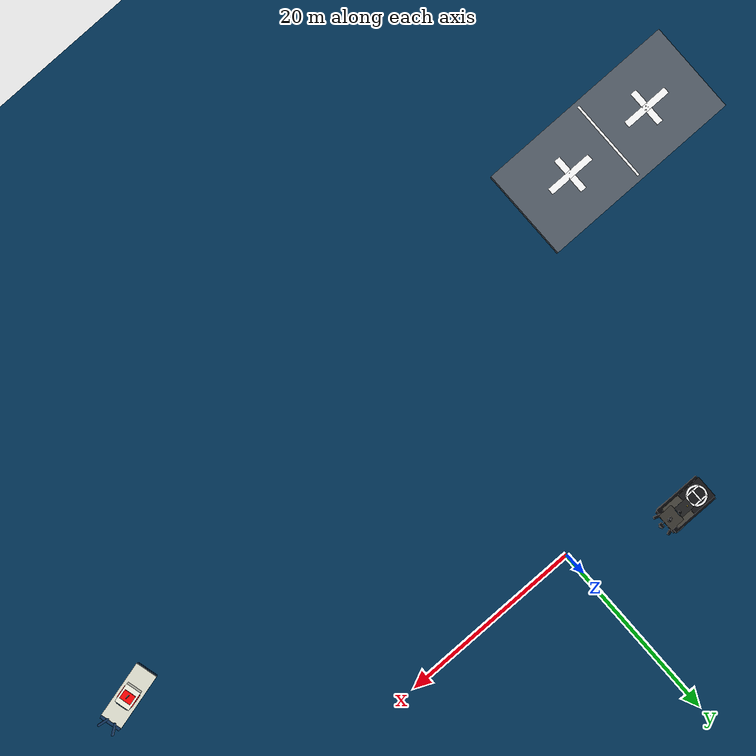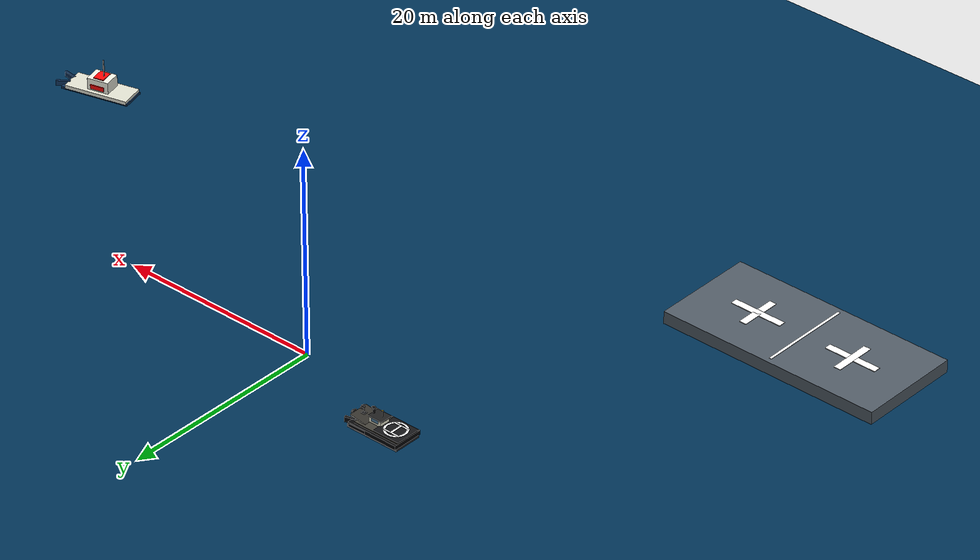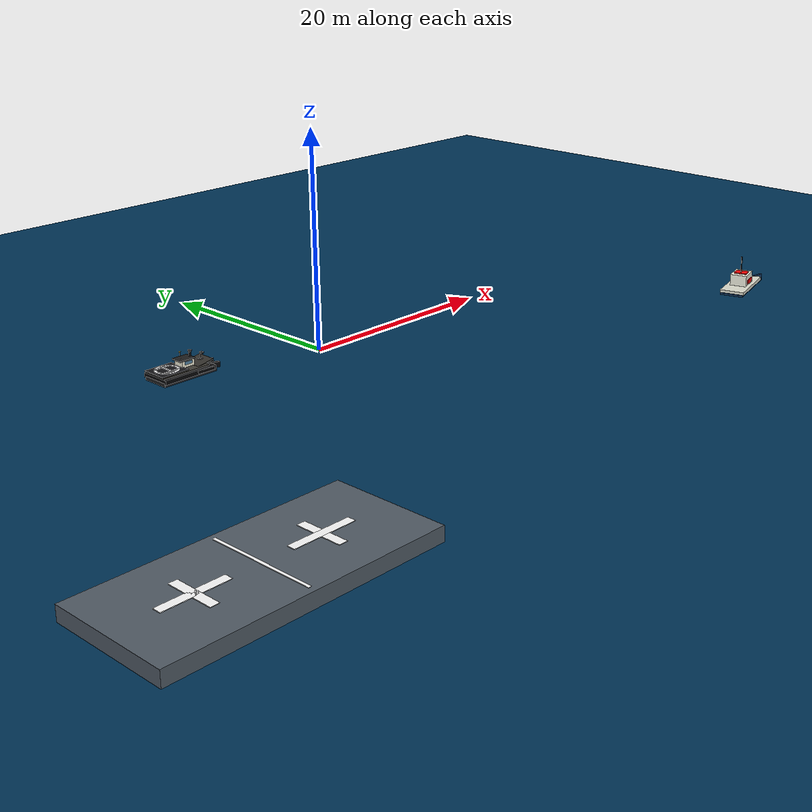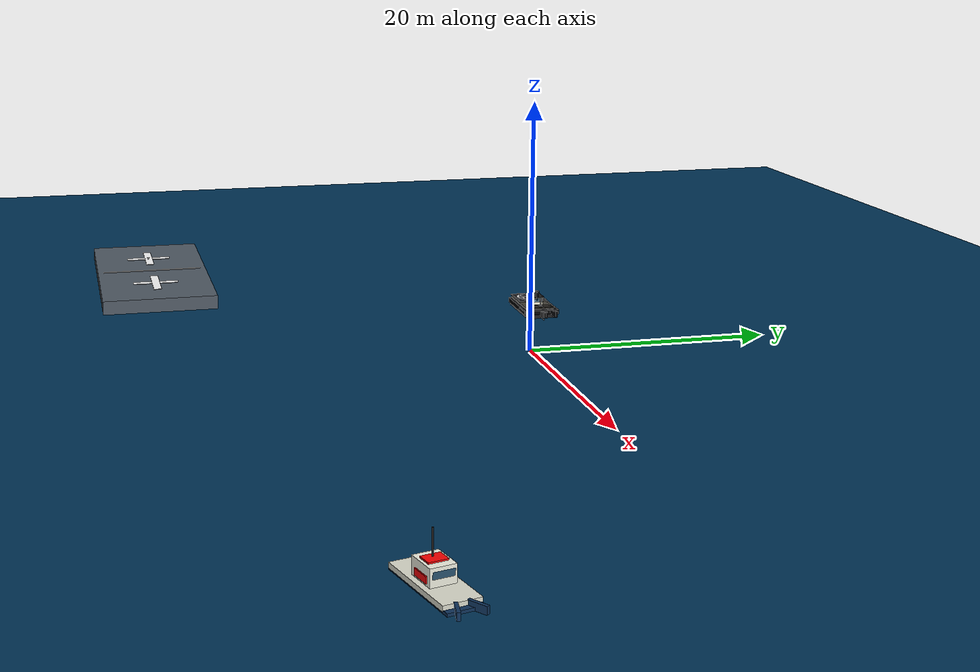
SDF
<sdf version="1.10">
 <world name="dual_uav_dynamic_capture">
  <plugin filename="gz-sim-physics-system" name="gz::sim::systems::Physics"/>
  <plugin filename="gz-sim-user-commands-system" name="gz::sim::systems::UserCommands"/>
  <plugin filename="gz-sim-scene-broadcaster-system" name="gz::sim::systems::SceneBroadcaster"/>
  <plugin filename="gz-sim-contact-system" name="gz::sim::systems::Contact"/>
  <plugin filename="gz-sim-sensors-system" name="gz::sim::systems::Sensors">
   <render_engine>ogre2</render_engine>
  </plugin>
  <plugin filename="gz-sim-imu-system" name="gz::sim::systems::Imu"/>
  <plugin filename="gz-sim-air-pressure-system" name="gz::sim::systems::AirPressure"/>
  <plugin filename="gz-sim-magnetometer-system" name="gz::sim::systems::Magnetometer"/>
  <plugin filename="gz-sim-navsat-system" name="gz::sim::systems::NavSat"/>
  <physics type="ode">
   <max_step_size>0.004</max_step_size>
   <real_time_factor>1</real_time_factor>
   <real_time_update_rate>250</real_time_update_rate>
  </physics>
  <gravity>0 0 -9.8</gravity>
  <scene>
   <grid>false</grid>
   <ambient>0.75 0.78 0.82 1</ambient>
   <background>0.82 0.9 0.96 1</background>
   <shadows>true</shadows>
  </scene>
  <spherical_coordinates>
   <surface_model>EARTH_WGS84</surface_model>
   <world_frame_orientation>ENU</world_frame_orientation>
   <latitude_deg>47.397971057728974</latitude_deg>
   <longitude_deg>8.5461637398001464</longitude_deg>
   <elevation>0</elevation>
   <heading_deg>0</heading_deg>
  </spherical_coordinates>
  <model name="ocean_plane">
   <static>true</static>
   <link name="ocean_link">
    <visual name="ocean_visual">
     <pose>0 0 -0.02 0 0 0</pose>
     <geometry><plane><normal>0 0 1</normal><size>600 600</size></plane></geometry>
     <material>
      <ambient>0 0.08 0.16 0.48</ambient>
      <diffuse>0 0.2 0.34 0.48</diffuse>
      <specular>0.05 0.08 0.1 1</specular>
     </material>
    </visual>
    <collision name="ocean_collision">
     <geometry><plane><normal>0 0 1</normal><size>600 600</size></plane></geometry>
    </collision>
   </link>
  </model>
  <model name="dual_uav_launch_pad">
   <static>true</static>
   <pose>-30 -28 0 0 0 0</pose>
   <link name="pad">
    <collision name="pad_collision">
     <pose>0 0 0.6 0 0 0</pose>
     <geometry><box><size>22 10 1.2</size></box></geometry>
    </collision>
    <visual name="pad_visual">
     <pose>0 0 0.6 0 0 0</pose>
     <geometry><box><size>22 10 1.2</size></box></geometry>
     <material><ambient>0.18 0.2 0.22 1</ambient><diffuse>0.32 0.36 0.4 1</diffuse></material>
    </visual>
    <visual name="divider">
     <pose>0 0 1.22 0 0 0</pose>
     <geometry><box><size>0.25 9 0.05</size></box></geometry>
     <material><ambient>1 1 1 1</ambient><diffuse>1 1 1 1</diffuse></material>
    </visual>
    <visual name="h_left_crossbar">
     <pose>-5 0 1.23 0 0 0</pose>
     <geometry><box><size>5.2 0.7 0.05</size></box></geometry>
     <material><ambient>1 1 1 1</ambient><diffuse>1 1 1 1</diffuse></material>
    </visual>
    <visual name="h_left_upright">
     <pose>-5 0 1.23 0 0 1.5708</pose>
     <geometry><box><size>4 0.7 0.05</size></box></geometry>
     <material><ambient>1 1 1 1</ambient><diffuse>1 1 1 1</diffuse></material>
    </visual>
    <visual name="h_right_crossbar">
     <pose>5 0 1.23 0 0 0</pose>
     <geometry><box><size>5.2 0.7 0.05</size></box></geometry>
     <material><ambient>1 1 1 1</ambient><diffuse>1 1 1 1</diffuse></material>
    </visual>
    <visual name="h_right_upright">
     <pose>5 0 1.23 0 0 1.5708</pose>
     <geometry><box><size>4 0.7 0.05</size></box></geometry>
     <material><ambient>1 1 1 1</ambient><diffuse>1 1 1 1</diffuse></material>
    </visual>
   </link>
  </model>
  <include><uri>model://simple_boat</uri><name>usv_01</name><pose>-12 4 0.35 0 0 0</pose></include>
  <include><uri>model://target_vessel</uri><name>enemy_target</name><pose>42 -18 0 0 0 0.25</pose></include>
  <light name="sun" type="directional">
   <pose>0 0 80 0 0 0</pose>
   <intensity>1.1</intensity>
   <direction>-0.35 0.2 -0.92</direction>
   <diffuse>0.9 0.9 0.86 1</diffuse>
   <specular>0.25 0.25 0.25 1</specular>
  </light>
 </world>
</sdf>

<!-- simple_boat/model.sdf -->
<sdf version="1.8">
  <model name="simple_boat">
    <pose>0 0 0.4375 0 0 0</pose>

    <link name="hull">
      <enable_wind>true</enable_wind>
      <inertial>
        <mass>150.0</mass>
        <inertia>
          <ixx>85.0</ixx>
          <iyy>180.0</iyy>
          <izz>220.0</izz>
          <ixy>0</ixy>
          <ixz>0</ixz>
          <iyz>0</iyz>
        </inertia>
      </inertial>

      <collision name="hull_collision">
        <pose>0 0 -0.0625 0 0 0</pose>
        <geometry>
          <box>
            <size>5.61 3.135 0.625</size>
          </box>
        </geometry>
      </collision>

      <visual name="lower_hull">
        <pose>-0.0825 0 -0.2 0 0 0</pose>
        <geometry>
          <box>
            <size>5.3625 2.7225 0.35</size>
          </box>
        </geometry>
        <material>
          <ambient>0.08 0.08 0.09 1</ambient>
          <diffuse>0.12 0.12 0.13 1</diffuse>
          <specular>0.1 0.1 0.1 1</specular>
        </material>
      </visual>

      <visual name="upper_hull">
        <pose>-0.165 0 0.0625 0 0 0</pose>
        <geometry>
          <box>
            <size>5.1975 3.003 0.4</size>
          </box>
        </geometry>
        <material>
          <ambient>0.015 0.015 0.018 1</ambient>
          <diffuse>0.025 0.025 0.03 1</diffuse>
          <specular>0.18 0.18 0.2 1</specular>
        </material>
      </visual>

      <visual name="bow_side_left">
        <pose>2.409 0.858 0.05 0 0 0.31</pose>
        <geometry>
          <box>
            <size>1.518 0.264 0.475</size>
          </box>
        </geometry>
        <material>
          <ambient>0.015 0.015 0.018 1</ambient>
          <diffuse>0.025 0.025 0.03 1</diffuse>
          <specular>0.18 0.18 0.2 1</specular>
        </material>
      </visual>

      <visual name="bow_side_right">
        <pose>2.409 -0.858 0.05 0 0 -0.31</pose>
        <geometry>
          <box>
            <size>1.518 0.264 0.475</size>
          </box>
        </geometry>
        <material>
          <ambient>0.015 0.015 0.018 1</ambient>
          <diffuse>0.025 0.025 0.03 1</diffuse>
          <specular>0.18 0.18 0.2 1</specular>
        </material>
      </visual>

      <visual name="bow_center_nose">
        <pose>3.003 0 0.05 0 0 0</pose>
        <geometry>
          <box>
            <size>0.33 0.528 0.5</size>
          </box>
        </geometry>
        <material>
          <ambient>0.012 0.012 0.015 1</ambient>
          <diffuse>0.022 0.022 0.026 1</diffuse>
          <specular>0.16 0.16 0.18 1</specular>
        </material>
      </visual>

      <visual name="bow_keel_line">
        <pose>2.5575 0 -0.425 0 1.5708 0</pose>
        <geometry>
          <cylinder>
            <radius>0.035</radius>
            <length>0.9</length>
          </cylinder>
        </geometry>
        <material>
          <ambient>0.006 0.006 0.008 1</ambient>
          <diffuse>0.012 0.012 0.014 1</diffuse>
        </material>
      </visual>

      <visual name="foredeck_slope">
        <pose>1.7325 0 0.45 0 -0.16 0</pose>
        <geometry>
          <box>
            <size>1.815 1.914 0.06875</size>
          </box>
        </geometry>
        <material>
          <ambient>0.12 0.12 0.115 1</ambient>
          <diffuse>0.2 0.19 0.17 1</diffuse>
          <specular>0.08 0.08 0.08 1</specular>
        </material>
      </visual>

      <visual name="bow_stem">
        <pose>3.201 0 0.0375 0 0 0</pose>
        <geometry>
          <box>
            <size>0.132 0.198 0.525</size>
          </box>
        </geometry>
        <material>
          <ambient>0.01 0.01 0.012 1</ambient>
          <diffuse>0.02 0.02 0.024 1</diffuse>
          <specular>0.16 0.16 0.18 1</specular>
        </material>
      </visual>

      <visual name="hull_side_fairing_left">
        <pose>0.0825 1.419 0.05 0 0 0.035</pose>
        <geometry>
          <box>
            <size>4.3725 0.132 0.275</size>
          </box>
        </geometry>
        <material>
          <ambient>0.01 0.01 0.012 1</ambient>
          <diffuse>0.018 0.018 0.022 1</diffuse>
          <specular>0.14 0.14 0.16 1</specular>
        </material>
      </visual>

      <visual name="hull_side_fairing_right">
        <pose>0.0825 -1.419 0.05 0 0 -0.035</pose>
        <geometry>
          <box>
            <size>4.3725 0.132 0.275</size>
          </box>
        </geometry>
        <material>
          <ambient>0.01 0.01 0.012 1</ambient>
          <diffuse>0.018 0.018 0.022 1</diffuse>
          <specular>0.14 0.14 0.16 1</specular>
        </material>
      </visual>

      <visual name="deck">
        <pose>-0.4125 0 0.3125 0 0 0</pose>
        <geometry>
          <box>
            <size>4.7025 2.475 0.1</size>
          </box>
        </geometry>
        <material>
          <ambient>0.18 0.18 0.17 1</ambient>
          <diffuse>0.26 0.25 0.22 1</diffuse>
          <specular>0.08 0.08 0.08 1</specular>
        </material>
      </visual>

      <visual name="cabin_body">
        <pose>0.33 0 0.725 0 0 0</pose>
        <geometry>
          <box>
            <size>1.287 1.023 0.6</size>
          </box>
        </geometry>
        <material>
          <ambient>0.86 0.86 0.8 1</ambient>
          <diffuse>0.96 0.95 0.86 1</diffuse>
          <specular>0.28 0.28 0.24 1</specular>
        </material>
      </visual>

      <visual name="front_window">
        <pose>0.99 0 0.8 0 0.28 0</pose>
        <geometry>
          <box>
            <size>0.05775 0.792 0.3</size>
          </box>
        </geometry>
        <material>
          <ambient>0.05 0.22 0.36 0.65</ambient>
          <diffuse>0.08 0.38 0.62 0.65</diffuse>
          <specular>0.9 0.95 1 1</specular>
        </material>
      </visual>

      <visual name="left_window">
        <pose>0.33 0.53625 0.8 0 0 0</pose>
        <geometry>
          <box>
            <size>0.7425 0.04125 0.275</size>
          </box>
        </geometry>
        <material>
          <ambient>0.05 0.22 0.36 0.65</ambient>
          <diffuse>0.08 0.38 0.62 0.65</diffuse>
          <specular>0.9 0.95 1 1</specular>
        </material>
      </visual>

      <visual name="right_window">
        <pose>0.33 -0.53625 0.8 0 0 0</pose>
        <geometry>
          <box>
            <size>0.7425 0.04125 0.275</size>
          </box>
        </geometry>
        <material>
          <ambient>0.05 0.22 0.36 0.65</ambient>
          <diffuse>0.08 0.38 0.62 0.65</diffuse>
          <specular>0.9 0.95 1 1</specular>
        </material>
      </visual>

      <visual name="cabin_roof">
        <pose>0.2475 0 1.0625 0 0 0</pose>
        <geometry>
          <box>
            <size>1.518 1.188 0.1</size>
          </box>
        </geometry>
        <material>
          <ambient>0.08 0.08 0.08 1</ambient>
          <diffuse>0.12 0.12 0.12 1</diffuse>
          <specular>0.18 0.18 0.18 1</specular>
        </material>
      </visual>

      <collision name="landing_pad_collision">
        <pose>-1.518 0 0.45 0 0 0</pose>
        <geometry>
          <box>
            <size>2.805 2.5575 0.3</size>
          </box>
        </geometry>
        <surface>
          <contact>
            <ode>
              <min_depth>0.001</min_depth>
              <max_vel>0</max_vel>
            </ode>
          </contact>
          <friction>
            <ode>
              <mu>1.5</mu>
              <mu2>1.5</mu2>
            </ode>
          </friction>
        </surface>
      </collision>

      <visual name="landing_pad_visual">
        <pose>-1.518 0 0.475 0 0 0</pose>
        <geometry>
          <box>
            <size>2.72 2.46 0.1</size>
          </box>
        </geometry>
        <material>
          <ambient>0.04 0.04 0.045 1</ambient>
          <diffuse>0.08 0.08 0.09 1</diffuse>
          <specular>0.08 0.08 0.08 1</specular>
        </material>
      </visual>

      <visual name="landing_pad_ring">
        <pose>-1.518 0 0.54375 0 0 0</pose>
        <geometry>
          <cylinder>
            <radius>1.08</radius>
            <length>0.015</length>
          </cylinder>
        </geometry>
        <material>
          <ambient>1 1 1 1</ambient>
          <diffuse>1 1 1 1</diffuse>
        </material>
      </visual>

      <visual name="landing_pad_center">
        <pose>-1.518 0 0.55625 0 0 0</pose>
        <geometry>
          <cylinder>
            <radius>0.86</radius>
            <length>0.0175</length>
          </cylinder>
        </geometry>
        <material>
          <ambient>0.04 0.04 0.045 1</ambient>
          <diffuse>0.08 0.08 0.09 1</diffuse>
        </material>
      </visual>

      <visual name="landing_h_left">
        <pose>-1.518 0.62 0.5725 0 0 0</pose>
        <geometry>
          <box>
            <size>1.55 0.18 0.015</size>
          </box>
        </geometry>
        <material>
          <ambient>1 1 1 1</ambient>
          <diffuse>1 1 1 1</diffuse>
        </material>
      </visual>

      <visual name="landing_h_right">
        <pose>-1.518 -0.62 0.5725 0 0 0</pose>
        <geometry>
          <box>
            <size>1.55 0.18 0.015</size>
          </box>
        </geometry>
        <material>
          <ambient>1 1 1 1</ambient>
          <diffuse>1 1 1 1</diffuse>
        </material>
      </visual>

      <visual name="landing_h_crossbar">
        <pose>-1.518 0 0.5775 0 0 0</pose>
        <geometry>
          <box>
            <size>0.2 1.42 0.015</size>
          </box>
        </geometry>
        <material>
          <ambient>1 1 1 1</ambient>
          <diffuse>1 1 1 1</diffuse>
        </material>
      </visual>

      <visual name="mast">
        <pose>-0.0825 0 1.375 0 0 0</pose>
        <geometry>
          <cylinder>
            <radius>0.0225</radius>
            <length>0.6875</length>
          </cylinder>
        </geometry>
        <material>
          <ambient>0.02 0.02 0.02 1</ambient>
          <diffuse>0.02 0.02 0.02 1</diffuse>
        </material>
      </visual>

      <visual name="nav_light">
        <pose>-0.0825 0 1.7375 0 0 0</pose>
        <geometry>
          <sphere>
            <radius>0.06875</radius>
          </sphere>
        </geometry>
        <material>
          <ambient>1 0.85 0.25 1</ambient>
          <diffuse>1 0.85 0.25 1</diffuse>
          <specular>1 0.9 0.5 1</specular>
        </material>
      </visual>

      <visual name="lidar_mount">
        <pose>0.9075 0 1.175 0 0 0</pose>
        <geometry>
          <cylinder>
            <radius>0.1125</radius>
            <length>0.775</length>
          </cylinder>
        </geometry>
        <material>
          <ambient>0.02 0.02 0.022 1</ambient>
          <diffuse>0.04 0.04 0.045 1</diffuse>
          <specular>0.2 0.2 0.22 1</specular>
        </material>
      </visual>

      <visual name="lidar_body">
        <pose>0.9075 0 1.5875 0 0 0</pose>
        <geometry>
          <cylinder>
            <radius>0.175</radius>
            <length>0.1</length>
          </cylinder>
        </geometry>
        <material>
          <ambient>0.01 0.01 0.012 1</ambient>
          <diffuse>0.02 0.02 0.024 1</diffuse>
          <specular>0.35 0.35 0.38 1</specular>
        </material>
      </visual>

      <visual name="front_camera_mount_base">
        <pose>1.98 0 0.56875 0 0 0</pose>
        <geometry>
          <box>
            <size>0.396 0.33 0.05</size>
          </box>
        </geometry>
        <material>
          <ambient>0.025 0.025 0.028 1</ambient>
          <diffuse>0.04 0.04 0.045 1</diffuse>
          <specular>0.18 0.18 0.2 1</specular>
        </material>
      </visual>

      <visual name="front_camera_mount_post">
        <pose>1.98 0 0.8125 0 0 0</pose>
        <geometry>
          <cylinder>
            <radius>0.04375</radius>
            <length>0.4375</length>
          </cylinder>
        </geometry>
        <material>
          <ambient>0.018 0.018 0.02 1</ambient>
          <diffuse>0.03 0.03 0.034 1</diffuse>
          <specular>0.18 0.18 0.2 1</specular>
        </material>
      </visual>

      <visual name="front_camera_body">
        <pose>2.1285 0 1.075 0 0 0</pose>
        <geometry>
          <box>
            <size>0.264 0.297 0.15</size>
          </box>
        </geometry>
        <material>
          <ambient>0.015 0.015 0.018 1</ambient>
          <diffuse>0.025 0.025 0.03 1</diffuse>
          <specular>0.2 0.2 0.22 1</specular>
        </material>
      </visual>

      <visual name="front_camera_lens">
        <pose>2.28525 0 1.075 0 1.5708 0</pose>
        <geometry>
          <cylinder>
            <radius>0.05625</radius>
            <length>0.03125</length>
          </cylinder>
        </geometry>
        <material>
          <ambient>0.02 0.04 0.06 1</ambient>
          <diffuse>0.03 0.08 0.12 1</diffuse>
          <specular>0.8 0.9 1 1</specular>
        </material>
      </visual>

      <sensor name="front_camera" type="camera">
        <pose>2.31825 0 1.075 0 0 0</pose>
        <topic>/boat/front_camera</topic>
        <update_rate>20</update_rate>
        <camera>
          <horizontal_fov>1.047</horizontal_fov>
          <image>
            <width>640</width>
            <height>360</height>
            <format>R8G8B8</format>
          </image>
          <clip>
            <near>0.05</near>
            <far>200</far>
          </clip>
        </camera>
        <always_on>true</always_on>
        <visualize>true</visualize>
      </sensor>

      <sensor name="front_lidar" type="gpu_lidar">
        <gz_frame_id>landing_boat/hull/front_lidar</gz_frame_id>
        <pose>0.9075 0 1.5625 0 0 0</pose>
        <topic>/boat/scan</topic>
        <update_rate>10</update_rate>
        <ray>
          <scan>
            <horizontal>
              <samples>361</samples>
              <resolution>1</resolution>
              <min_angle>-1.5708</min_angle>
              <max_angle>1.5708</max_angle>
            </horizontal>
          </scan>
          <range>
            <min>0.35</min>
            <max>80</max>
            <resolution>0.02</resolution>
          </range>
          <noise>
            <type>gaussian</type>
            <mean>0</mean>
            <stddev>0.01</stddev>
          </noise>
          <visibility_mask>0x01</visibility_mask>
        </ray>
        <always_on>true</always_on>
        <visualize>true</visualize>
      </sensor>
    </link>

    <plugin
      filename="gz-sim-velocity-control-system"
      name="gz::sim::systems::VelocityControl">
      <topic>/model/simple_boat/cmd_vel</topic>
      <control_linear_velocity>true</control_linear_velocity>
      <control_angular_velocity>true</control_angular_velocity>
    </plugin>

    <plugin
      filename="gz-sim-pose-publisher-system"
      name="gz::sim::systems::PosePublisher">
      <publish_model_pose>true</publish_model_pose>
      <publish_link_pose>false</publish_link_pose>
      <publish_collision_pose>false</publish_collision_pose>
      <publish_visual_pose>false</publish_visual_pose>
      <publish_nested_model_pose>false</publish_nested_model_pose>
      <publish_sensor_pose>false</publish_sensor_pose>
      <use_pose_vector_msg>false</use_pose_vector_msg>
      <topic>/boat/pose</topic>
      <update_frequency>30</update_frequency>
    </plugin>

    <plugin
      filename="libBoatWaveFollower.so"
      name="gz::sim::systems::BoatWaveFollower">
      <mean_z>0.55</mean_z>
      <heave_amplitude>0.11</heave_amplitude>
      <roll_amplitude>0.055</roll_amplitude>
      <pitch_amplitude>0.045</pitch_amplitude>
      <primary_frequency>1.1</primary_frequency>
      <secondary_frequency>1.7</secondary_frequency>
      <wave_number_x>0.35</wave_number_x>
      <wave_number_y>0.22</wave_number_y>
    </plugin>
  </model>
</sdf>

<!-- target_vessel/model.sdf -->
<sdf version="1.8">
  <model name="target_vessel">
    <pose>0 0 0.42 0 0 0</pose>
    <link name="hull">
      <enable_wind>true</enable_wind>
      <inertial>
        <mass>180</mass>
        <inertia>
          <ixx>110</ixx>
          <iyy>420</iyy>
          <izz>500</izz>
        </inertia>
      </inertial>

      <collision name="hull_collision">
        <pose>0 0 0 0 0 0</pose>
        <geometry>
          <box>
            <size>7.0 2.6 0.9</size>
          </box>
        </geometry>
      </collision>

      <visual name="lower_hull">
        <pose>-0.2 0 -0.2 0 0 0</pose>
        <geometry>
          <box>
            <size>6.7 2.3 0.55</size>
          </box>
        </geometry>
        <material>
          <ambient>0.05 0.12 0.2 1</ambient>
          <diffuse>0.06 0.2 0.36 1</diffuse>
          <specular>0.18 0.25 0.32 1</specular>
        </material>
      </visual>

      <visual name="upper_hull">
        <pose>-0.35 0 0.18 0 0 0</pose>
        <geometry>
          <box>
            <size>6.2 2.4 0.35</size>
          </box>
        </geometry>
        <material>
          <ambient>0.72 0.72 0.68 1</ambient>
          <diffuse>0.88 0.88 0.82 1</diffuse>
          <specular>0.2 0.2 0.18 1</specular>
        </material>
      </visual>

      <visual name="bow_left">
        <pose>3.25 0.62 0.0 0 0 0.38</pose>
        <geometry>
          <box>
            <size>1.3 0.22 0.75</size>
          </box>
        </geometry>
        <material>
          <ambient>0.05 0.12 0.2 1</ambient>
          <diffuse>0.06 0.2 0.36 1</diffuse>
        </material>
      </visual>

      <visual name="bow_right">
        <pose>3.25 -0.62 0.0 0 0 -0.38</pose>
        <geometry>
          <box>
            <size>1.3 0.22 0.75</size>
          </box>
        </geometry>
        <material>
          <ambient>0.05 0.12 0.2 1</ambient>
          <diffuse>0.06 0.2 0.36 1</diffuse>
        </material>
      </visual>

      <visual name="cabin">
        <pose>-0.4 0 0.85 0 0 0</pose>
        <geometry>
          <box>
            <size>2.1 1.65 1.25</size>
          </box>
        </geometry>
        <material>
          <ambient>0.86 0.86 0.82 1</ambient>
          <diffuse>0.96 0.96 0.9 1</diffuse>
        </material>
      </visual>

      <visual name="bridge_window">
        <pose>0.68 0 1.0 0 0.25 0</pose>
        <geometry>
          <box>
            <size>0.04 1.35 0.55</size>
          </box>
        </geometry>
        <material>
          <ambient>0.03 0.12 0.2 0.8</ambient>
          <diffuse>0.04 0.28 0.46 0.8</diffuse>
          <specular>0.8 0.9 1 1</specular>
        </material>
      </visual>

      <visual name="mast">
        <pose>-0.6 0 2.1 0 0 0</pose>
        <geometry>
          <cylinder>
            <radius>0.06</radius>
            <length>2.2</length>
          </cylinder>
        </geometry>
        <material>
          <ambient>0.08 0.08 0.08 1</ambient>
          <diffuse>0.12 0.12 0.12 1</diffuse>
        </material>
      </visual>

      <!-- Visual-only hostile identity plates. They are intentionally local
           features and do not alter collision, inertia or control. -->
      <visual name="hostile_identity_roof">
        <pose>-0.4 0 1.52 0 0 0</pose>
        <geometry><box><size>1.0 1.25 0.10</size></box></geometry>
        <material>
          <ambient>0.8 0.01 0.01 1</ambient>
          <diffuse>1.0 0.02 0.02 1</diffuse>
          <emissive>0.35 0 0 1</emissive>
        </material>
      </visual>
      <visual name="hostile_identity_port">
        <pose>-0.35 0.86 0.72 0 0 0</pose>
        <geometry><box><size>1.35 0.08 0.42</size></box></geometry>
        <material>
          <ambient>0.8 0.01 0.01 1</ambient>
          <diffuse>1.0 0.02 0.02 1</diffuse>
          <emissive>0.3 0 0 1</emissive>
        </material>
      </visual>
      <visual name="hostile_identity_starboard">
        <pose>-0.35 -0.86 0.72 0 0 0</pose>
        <geometry><box><size>1.35 0.08 0.42</size></box></geometry>
        <material>
          <ambient>0.8 0.01 0.01 1</ambient>
          <diffuse>1.0 0.02 0.02 1</diffuse>
          <emissive>0.3 0 0 1</emissive>
        </material>
      </visual>

      <light name="navigation_light" type="point">
        <pose>-0.6 0 3.25 0 0 0</pose>
        <cast_shadows>false</cast_shadows>
        <intensity>1.2</intensity>
        <diffuse>0.2 1 0.35 1</diffuse>
        <attenuation>
          <range>30</range>
          <constant>0.7</constant>
          <linear>0.04</linear>
          <quadratic>0.002</quadratic>
        </attenuation>
      </light>
    </link>

    <plugin
      filename="gz-sim-velocity-control-system"
      name="gz::sim::systems::VelocityControl">
      <topic>/model/target_vessel/cmd_vel</topic>
      <control_linear_velocity>true</control_linear_velocity>
      <control_angular_velocity>true</control_angular_velocity>
      <initial_linear>0.8 0 0</initial_linear>
      <initial_angular>0 0 0.008</initial_angular>
    </plugin>

    <plugin
      filename="gz-sim-pose-publisher-system"
      name="gz::sim::systems::PosePublisher">
      <publish_model_pose>true</publish_model_pose>
      <publish_link_pose>false</publish_link_pose>
      <use_pose_vector_msg>false</use_pose_vector_msg>
      <topic>/target_vessel/pose</topic>
      <update_frequency>20</update_frequency>
    </plugin>

    <plugin
      filename="libBoatWaveFollower.so"
      name="gz::sim::systems::BoatWaveFollower">
      <mean_z>0.50</mean_z>
      <heave_amplitude>0.08</heave_amplitude>
      <roll_amplitude>0.035</roll_amplitude>
      <pitch_amplitude>0.028</pitch_amplitude>
      <primary_frequency>1.0</primary_frequency>
      <secondary_frequency>1.55</secondary_frequency>
      <wave_number_x>0.32</wave_number_x>
      <wave_number_y>0.20</wave_number_y>
    </plugin>
  </model>
</sdf>
